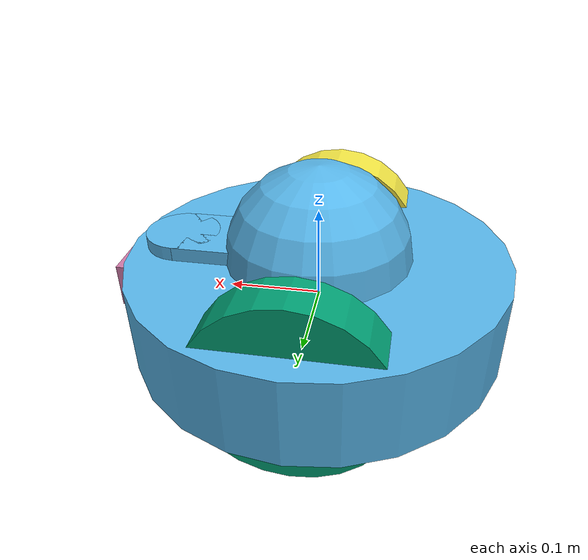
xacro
<?xml version='1.0'?>

<robot name="custom_bot" xmlns:xacro="http://www.ros.org/wiki/xacro">

  <xacro:include filename="$(find slam_project)/urdf/custom_bot.gazebo" />

  <link name="robot_footprint"></link>

  <joint name="robot_footprint_joint" type="fixed">
    <origin xyz="0 0 0" rpy="0 0 0" />
    <parent link="robot_footprint"/>
    <child link="chassis" />
  </joint>

  <link name='chassis'>
    <pose>0 0 0.1 0 0 0</pose>

    <inertial>
      <mass value="15.0"/>
      <origin xyz="0.0 0 0" rpy=" 0 0 0"/>
      <inertia
          ixx="0.0" ixy="0" ixz="0"
          iyy="0.0" iyz="0"
          izz="0.0"
      />
    </inertial>

    <collision name='collision'>
      <origin xyz="0 0 0" rpy=" 0 0 0"/>
      <geometry>
        <cylinder radius=".205" length="0.1"/>
      </geometry>
    </collision>

    <visual name='chassis_visual'>
      <origin xyz="0 0 0" rpy=" 0 0 0"/>
      <geometry>
        <cylinder radius=".205" length="0.1"/>
      </geometry>
    </visual>

    <visual name='chassis_visual2'>
      <origin xyz="0 0 0.05" rpy=" 0 0 0"/>
      <geometry>
        <sphere radius="0.1"/>
      </geometry>
    </visual>

    <visual name='chassis_visual3'>
      <origin xyz="0.15 0 0.05" rpy=" 0 0 0"/>
      <geometry>
        <cylinder radius="0.04" length="0.03"/>
      </geometry>
    </visual>

    <visual name='chassis_visual4'>
      <origin xyz="0.07 0 0.05" rpy=" 0 0 0"/>
      <geometry>
        <box size="0.16 0.08 0.03"/>
      </geometry>
    </visual>

    <collision name='back_caster_collision'>
      <origin xyz="-0.15 0 -0.05" rpy=" 0 0 0"/>
      <geometry>
        <sphere radius="0.0499"/>
      </geometry>
    </collision>

    <visual name='back_caster_visual'>
      <origin xyz="-0.15 0 -0.05" rpy=" 0 0 0"/>
      <geometry>
        <sphere radius="0.05"/>
      </geometry>
    </visual>

    <collision name='front_caster_collision'>
      <origin xyz="0.15 0 -0.05" rpy=" 0 0 0"/>
      <geometry>
        <sphere radius="0.0499"/>
      </geometry>
    </collision>

    <visual name='front_caster_visual'>
      <origin xyz="0.15 0 -0.05" rpy=" 0 0 0"/>
      <geometry>
        <sphere radius="0.05"/>
      </geometry>
    </visual>

  </link>

  <link name='left_wheel'>
    <inertial>
      <mass value="5.0"/>
      <origin xyz="0.0 0 0" rpy=" 0 1.5705 1.5707"/>
      <inertia
          ixx="0.0" ixy="0" ixz="0"
          iyy="0.0" iyz="0"
          izz="0.0"
      />
    </inertial>

    <collision name='wheel_collision'>
      <origin xyz="0 0 0" rpy=" 0 1.5705 1.5705"/>
      <geometry>
        <cylinder length="0.05" radius="0.1"/>
      </geometry>
    </collision>

    <visual name='wheel_visual'>
      <origin xyz="0 0 0" rpy=" 0 1.5705 1.5705"/>
      <geometry>
        <cylinder length="0.05" radius="0.1"/>
      </geometry>
    </visual>
  </link>

  <link name='right_wheel'>
    <inertial>
      <mass value="5.0"/>
      <origin xyz="0.0 0 0" rpy=" 0 1.5705 1.5707"/>
      <inertia
          ixx="0.0" ixy="0" ixz="0"
          iyy="0.0" iyz="0"
          izz="0.0"
      />
    </inertial>

    <collision name='wheel_collision'>
      <origin xyz="0 0 0" rpy=" 0 1.5705 1.5705"/>
      <geometry>
        <cylinder length="0.05" radius="0.1"/>
      </geometry>
    </collision>

    <visual name='wheel_visual'>
      <origin xyz="0 0 0" rpy=" 0 1.5705 1.5705"/>
      <geometry>
        <cylinder length="0.05" radius="0.1"/>
      </geometry>
    </visual>
  </link>

  <link name='camera_depth_frame'></link>
  <link name="camera_compensation_frame"></link>

  <link name='camera'>
    <inertial>
      <mass value="0.1"/>
      <origin xyz="0.0 0 0" rpy=" 0 0 0"/>
      <inertia
          ixx="0" ixy="0" ixz="0"
          iyy="0" iyz="0"
          izz="0"
      />
    </inertial>

    <collision name='camera_collision'>
      <origin xyz="0 0 0" rpy=" 0 0 0"/>
      <geometry>
        <box size="0.05 0.05 0.05"/>
      </geometry>
    </collision>

    <visual name='camera_visual'>
      <origin xyz="0 0 0" rpy=" 0 0 0"/>
      <geometry>
        <box size="0.05 0.05 0.05"/>
      </geometry>
    </visual>
  </link>

  <joint type="continuous" name="left_wheel_hinge">
    <origin xyz="0 0.15 0" rpy="0 0 0"/>
    <child link="left_wheel"/>
    <parent link="chassis"/>
    <axis xyz="0 1 0" rpy="0 0 0"/>
    <limit effort="10000" velocity="1000"/>
    <dynamics damping="1.0" friction="1.0"/>
  </joint>

  <joint type="continuous" name="right_wheel_hinge">
    <origin xyz="0 -0.15 0" rpy="0 0 0"/>
    <child link="right_wheel"/>
    <parent link="chassis"/>
    <axis xyz="0 1 0" rpy="0 0 0"/>
    <limit effort="10000" velocity="1000"/>
    <dynamics damping="1.0" friction="1.0"/>
  </joint>

  <joint type="fixed" name="camera_joint">
    <origin xyz="0.2 0 0" rpy="0 0 0"/>
    <child link="camera"/>
    <parent link="chassis"/>
  </joint>

  <joint type="fixed" name="camera_depth_joint">
    <origin xyz="0.2 0 0" rpy="0 0 0"/>
    <child link="camera_depth_frame"/>
    <parent link="chassis"/>
  </joint>

  <joint name="camera_compensation_joint" type="fixed">
    <origin xyz="0 0 0" rpy="-1.5707 0 -1.5707" />
    <child link="camera_compensation_frame" />
    <parent link="camera" />
  </joint>-->

</robot>
